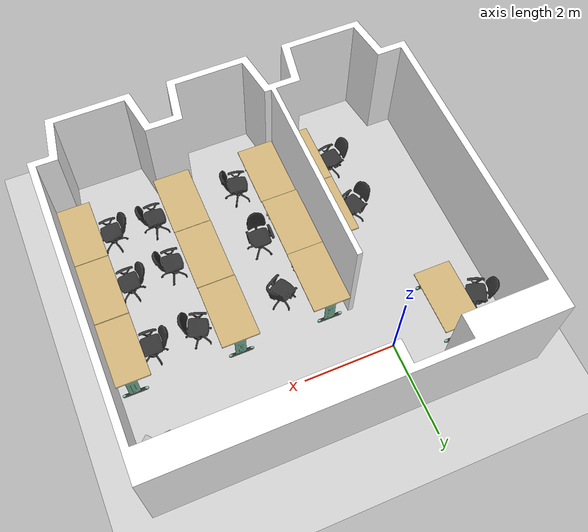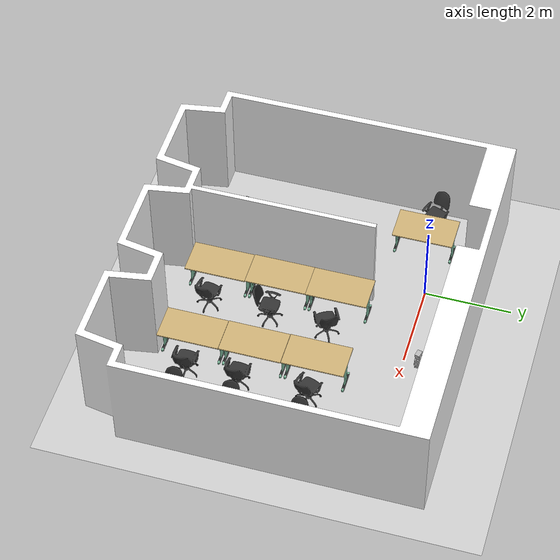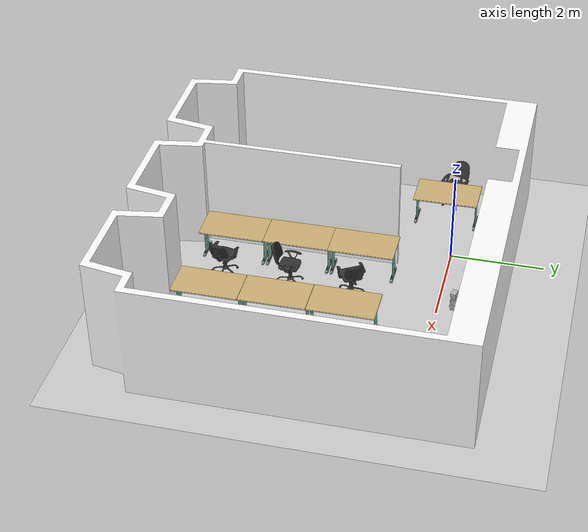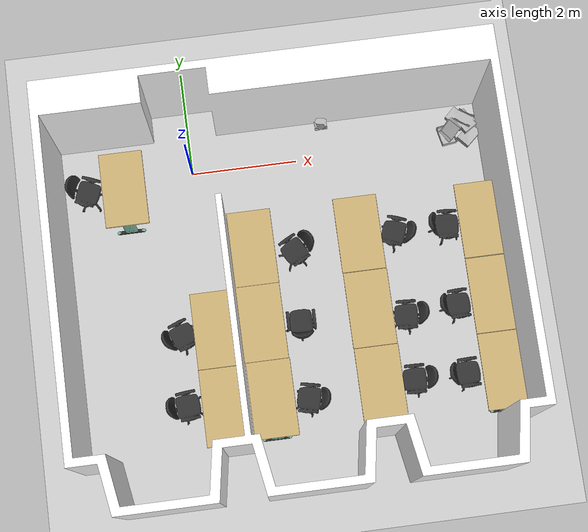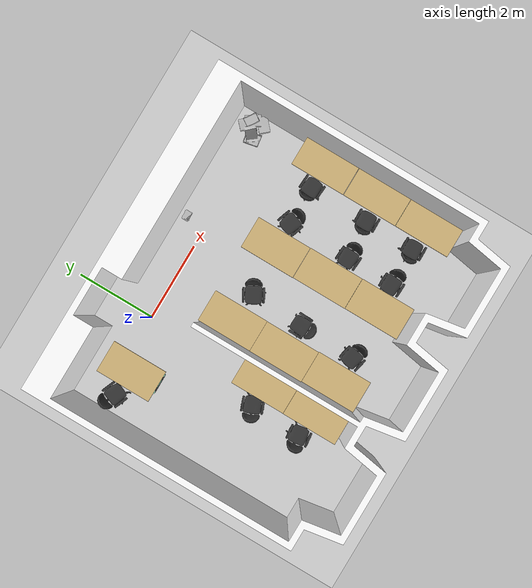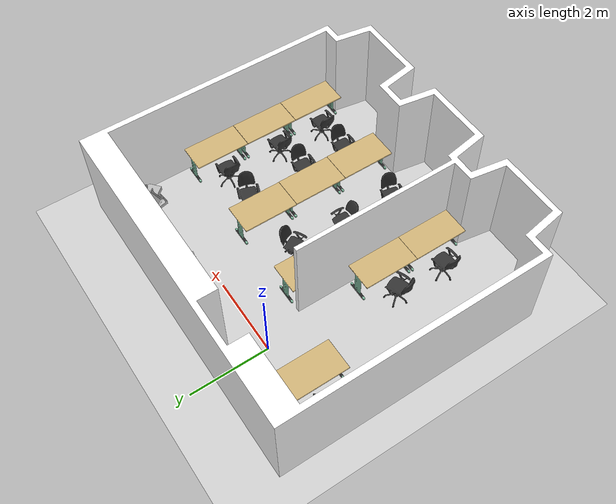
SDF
<sdf version="1.6">
 <world name="default">
  <light name="sun" type="directional">
   <pose>0 0 10 0 -0 0</pose>
   <diffuse>0.8 0.8 0.8 1</diffuse>
   <specular>0.2 0.2 0.2 1</specular>
   <attenuation>
    <range>1000</range>
    <constant>0.9</constant>
    <linear>0.01</linear>
    <quadratic>0.001</quadratic>
   </attenuation>
   <direction>-0.5 0.1 -0.9</direction>
  </light>
  <model name="ground_plane">
   <static>1</static>
   <link name="link">
    <collision name="collision">
     <geometry><plane><normal>0 0 1</normal><size>100 100</size></plane></geometry>
     <surface><friction><ode><mu>100</mu><mu2>50</mu2></ode></friction></surface>
    </collision>
    <visual name="visual">
     <cast_shadows>0</cast_shadows>
     <geometry><plane><normal>0 0 1</normal><size>100 100</size></plane></geometry>
     <material>
      <script><uri>file://media/materials/scripts/gazebo.material</uri><name>Gazebo/Grey</name></script>
     </material>
    </visual>
   </link>
  </model>
  <gravity>0 0 -9.8</gravity>
  <magnetic_field>6e-06 2.3e-05 -4.2e-05</magnetic_field>
  <atmosphere type="adiabatic"/>
  <physics name="default_physics" default="0" type="ode">
   <max_step_size>0.001</max_step_size>
   <real_time_factor>1</real_time_factor>
   <real_time_update_rate>1000</real_time_update_rate>
  </physics>
  <scene><ambient>0.4 0.4 0.4 1</ambient><background>0.7 0.7 0.7 1</background><shadows>1</shadows></scene>
  <spherical_coordinates>
   <surface_model>EARTH_WGS84</surface_model>
   <latitude_deg>0</latitude_deg>
   <longitude_deg>0</longitude_deg>
   <elevation>0</elevation>
   <heading_deg>0</heading_deg>
  </spherical_coordinates>
  <model name="phd_office">
   <link name="link">
    <collision name="collision">
     <geometry><mesh><uri>model://phd_office/meshes/walls.dae</uri></mesh></geometry>
    </collision>
    <visual name="visual">
     <geometry><mesh><uri>model://phd_office/meshes/walls.dae</uri></mesh></geometry>
    </visual>
   </link>
   <static>1</static>
   <pose>-0.091374 -0.006383 0 0 -0 0</pose>
  </model>
  <model name="desk_shared">
   <link name="link">
    <collision name="collision">
     <geometry><mesh><uri>model://desk_shared/meshes/model.dae</uri></mesh></geometry>
    </collision>
    <visual name="visual">
     <geometry><mesh><uri>model://desk_shared/meshes/model.dae</uri></mesh></geometry>
    </visual>
   </link>
   <static>1</static>
   <pose>5.21988 -4.57125 0 0 -0 0</pose>
  </model>
  <model name="desk_shared_0">
   <link name="link">
    <collision name="collision">
     <geometry><mesh><uri>model://desk_shared/meshes/model.dae</uri></mesh></geometry>
    </collision>
    <visual name="visual">
     <geometry><mesh><uri>model://desk_shared/meshes/model.dae</uri></mesh></geometry>
    </visual>
   </link>
   <static>1</static>
   <pose>5.21914 -3.15589 0 0 -0 0</pose>
  </model>
  <model name="desk_shared_1">
   <link name="link">
    <collision name="collision">
     <geometry><mesh><uri>model://desk_shared/meshes/model.dae</uri></mesh></geometry>
    </collision>
    <visual name="visual">
     <geometry><mesh><uri>model://desk_shared/meshes/model.dae</uri></mesh></geometry>
    </visual>
   </link>
   <static>1</static>
   <pose>5.21938 -1.73596 0 0 -0 0</pose>
  </model>
  <model name="desk_shared_2">
   <link name="link">
    <collision name="collision">
     <geometry><mesh><uri>model://desk_shared/meshes/model.dae</uri></mesh></geometry>
    </collision>
    <visual name="visual">
     <geometry><mesh><uri>model://desk_shared/meshes/model.dae</uri></mesh></geometry>
    </visual>
   </link>
   <static>1</static>
   <pose>2.95815 -4.55021 0 0 -0 0</pose>
  </model>
  <model name="desk_shared_3">
   <link name="link">
    <collision name="collision">
     <geometry><mesh><uri>model://desk_shared/meshes/model.dae</uri></mesh></geometry>
    </collision>
    <visual name="visual">
     <geometry><mesh><uri>model://desk_shared/meshes/model.dae</uri></mesh></geometry>
    </visual>
   </link>
   <static>1</static>
   <pose>2.95254 -3.13758 0 0 -0 0</pose>
  </model>
  <model name="desk_shared_4">
   <link name="link">
    <collision name="collision">
     <geometry><mesh><uri>model://desk_shared/meshes/model.dae</uri></mesh></geometry>
    </collision>
    <visual name="visual">
     <geometry><mesh><uri>model://desk_shared/meshes/model.dae</uri></mesh></geometry>
    </visual>
   </link>
   <static>1</static>
   <pose>0.969302 -4.55629 0 0 -0 0</pose>
  </model>
  <model name="desk_shared_5">
   <link name="link">
    <collision name="collision">
     <geometry><mesh><uri>model://desk_shared/meshes/model.dae</uri></mesh></geometry>
    </collision>
    <visual name="visual">
     <geometry><mesh><uri>model://desk_shared/meshes/model.dae</uri></mesh></geometry>
    </visual>
   </link>
   <static>1</static>
   <pose>0.955219 -3.14725 0 0 -0 0</pose>
  </model>
  <model name="desk_shared_6">
   <link name="link">
    <collision name="collision">
     <geometry><mesh><uri>model://desk_shared/meshes/model.dae</uri></mesh></geometry>
    </collision>
    <visual name="visual">
     <geometry><mesh><uri>model://desk_shared/meshes/model.dae</uri></mesh></geometry>
    </visual>
   </link>
   <static>1</static>
   <pose>0.958141 -1.74108 0 0 -0 0</pose>
  </model>
  <model name="desk_shared_7">
   <link name="link">
    <collision name="collision">
     <geometry><mesh><uri>model://desk_shared/meshes/model.dae</uri></mesh></geometry>
    </collision>
    <visual name="visual">
     <geometry><mesh><uri>model://desk_shared/meshes/model.dae</uri></mesh></geometry>
    </visual>
   </link>
   <static>1</static>
   <pose>2.94563 -1.72269 0 0 -0 0</pose>
  </model>
  <model name="boxes">
   <link name="link">
    <collision name="collision">
     <geometry><mesh><uri>model://boxes/meshes/model.dae</uri></mesh></geometry>
    </collision>
    <visual name="visual"><geometry><mesh><uri>model://boxes/meshes/model.dae</uri></mesh></geometry></visual>
   </link>
   <static>1</static>
   <pose>5.19496 0.310746 0 0 -0 0</pose>
  </model>
  <model name="office_chair">
   <link name="link">
    <collision name="collision">
     <geometry><mesh><uri>model://office_chair/meshes/model.dae</uri></mesh></geometry>
    </collision>
    <visual name="visual">
     <geometry><mesh><uri>model://office_chair/meshes/model.dae</uri></mesh></geometry>
    </visual>
   </link>
   <static>1</static>
   <pose>4.53144 -4.51587 0 0 0 -1.54343</pose>
  </model>
  <model name="office_chair_0">
   <link name="link">
    <collision name="collision">
     <geometry><mesh><uri>model://office_chair/meshes/model.dae</uri></mesh></geometry>
    </collision>
    <visual name="visual">
     <geometry><mesh><uri>model://office_chair/meshes/model.dae</uri></mesh></geometry>
    </visual>
   </link>
   <static>1</static>
   <pose>4.54406 -3.23105 0 0 0 -1.53922</pose>
  </model>
  <model name="office_chair_1">
   <link name="link">
    <collision name="collision">
     <geometry><mesh><uri>model://office_chair/meshes/model.dae</uri></mesh></geometry>
    </collision>
    <visual name="visual">
     <geometry><mesh><uri>model://office_chair/meshes/model.dae</uri></mesh></geometry>
    </visual>
   </link>
   <static>1</static>
   <pose>4.56102 -1.71519 0 0 0 -1.63117</pose>
  </model>
  <model name="office_chair_2">
   <link name="link">
    <collision name="collision">
     <geometry><mesh><uri>model://office_chair/meshes/model.dae</uri></mesh></geometry>
    </collision>
    <visual name="visual">
     <geometry><mesh><uri>model://office_chair/meshes/model.dae</uri></mesh></geometry>
    </visual>
   </link>
   <static>1</static>
   <pose>3.66732 -1.74599 0 0 -0 1.23687</pose>
  </model>
  <model name="office_chair_3">
   <link name="link">
    <collision name="collision">
     <geometry><mesh><uri>model://office_chair/meshes/model.dae</uri></mesh></geometry>
    </collision>
    <visual name="visual">
     <geometry><mesh><uri>model://office_chair/meshes/model.dae</uri></mesh></geometry>
    </visual>
   </link>
   <static>1</static>
   <pose>3.67213 -3.32471 0 0 -0 1.51512</pose>
  </model>
  <model name="office_chair_4">
   <link name="link">
    <collision name="collision">
     <geometry><mesh><uri>model://office_chair/meshes/model.dae</uri></mesh></geometry>
    </collision>
    <visual name="visual">
     <geometry><mesh><uri>model://office_chair/meshes/model.dae</uri></mesh></geometry>
    </visual>
   </link>
   <static>1</static>
   <pose>3.65682 -4.51894 0 0 -0 1.54286</pose>
  </model>
  <model name="office_chair_5">
   <link name="link">
    <collision name="collision">
     <geometry><mesh><uri>model://office_chair/meshes/model.dae</uri></mesh></geometry>
    </collision>
    <visual name="visual">
     <geometry><mesh><uri>model://office_chair/meshes/model.dae</uri></mesh></geometry>
    </visual>
   </link>
   <static>1</static>
   <pose>1.6922 -4.62749 0 0 -0 1.36198</pose>
  </model>
  <model name="office_chair_6">
   <link name="link">
    <collision name="collision">
     <geometry><mesh><uri>model://office_chair/meshes/model.dae</uri></mesh></geometry>
    </collision>
    <visual name="visual">
     <geometry><mesh><uri>model://office_chair/meshes/model.dae</uri></mesh></geometry>
    </visual>
   </link>
   <static>1</static>
   <pose>1.67225 -3.22844 0 0 0 -0.024225</pose>
  </model>
  <model name="office_chair_7">
   <link name="link">
    <collision name="collision">
     <geometry><mesh><uri>model://office_chair/meshes/model.dae</uri></mesh></geometry>
    </collision>
    <visual name="visual">
     <geometry><mesh><uri>model://office_chair/meshes/model.dae</uri></mesh></geometry>
    </visual>
   </link>
   <static>1</static>
   <pose>1.77531 -1.82547 0 0 -0 2.07128</pose>
  </model>
  <model name="desk_shared_8">
   <link name="link">
    <collision name="collision">
     <geometry><mesh><uri>model://desk_shared/meshes/model.dae</uri></mesh></geometry>
    </collision>
    <visual name="visual">
     <geometry><mesh><uri>model://desk_shared/meshes/model.dae</uri></mesh></geometry>
    </visual>
   </link>
   <static>1</static>
   <pose>0.10478 -3.16357 0 0 -0 0</pose>
  </model>
  <model name="desk_shared_9">
   <link name="link">
    <collision name="collision">
     <geometry><mesh><uri>model://desk_shared/meshes/model.dae</uri></mesh></geometry>
    </collision>
    <visual name="visual">
     <geometry><mesh><uri>model://desk_shared/meshes/model.dae</uri></mesh></geometry>
    </visual>
   </link>
   <static>1</static>
   <pose>0.10096 -4.57568 0 0 -0 0</pose>
  </model>
  <model name="office_chair_8">
   <link name="link">
    <collision name="collision">
     <geometry><mesh><uri>model://office_chair/meshes/model.dae</uri></mesh></geometry>
    </collision>
    <visual name="visual">
     <geometry><mesh><uri>model://office_chair/meshes/model.dae</uri></mesh></geometry>
    </visual>
   </link>
   <static>1</static>
   <pose>-0.565865 -3.1817 0 0 0 -1.20671</pose>
  </model>
  <model name="office_chair_9">
   <link name="link">
    <collision name="collision">
     <geometry><mesh><uri>model://office_chair/meshes/model.dae</uri></mesh></geometry>
    </collision>
    <visual name="visual">
     <geometry><mesh><uri>model://office_chair/meshes/model.dae</uri></mesh></geometry>
    </visual>
   </link>
   <static>1</static>
   <pose>-0.623075 -4.46866 0 0 0 -1.4665</pose>
  </model>
  <model name="desk_shared_10">
   <link name="link">
    <collision name="collision">
     <geometry><mesh><uri>model://desk_shared/meshes/model.dae</uri></mesh></geometry>
    </collision>
    <visual name="visual">
     <geometry><mesh><uri>model://desk_shared/meshes/model.dae</uri></mesh></geometry>
    </visual>
   </link>
   <static>1</static>
   <pose>-1.27944 -0.317301 0 0 -0 0</pose>
  </model>
  <model name="office_chair_10">
   <link name="link">
    <collision name="collision">
     <geometry><mesh><uri>model://office_chair/meshes/model.dae</uri></mesh></geometry>
    </collision>
    <visual name="visual">
     <geometry><mesh><uri>model://office_chair/meshes/model.dae</uri></mesh></geometry>
    </visual>
   </link>
   <static>1</static>
   <pose>-2.01547 -0.224377 0 0 0 -1.95249</pose>
  </model>
  <model name="books">
   <link name="link">
    <collision name="collision">
     <geometry><mesh><uri>model://books/meshes/model.dae</uri></mesh></geometry>
    </collision>
    <visual name="visual"><geometry><mesh><uri>model://books/meshes/model.dae</uri></mesh></geometry></visual>
   </link>
   <static>1</static>
   <pose>2.5164 0.449756 0.672759 0 -0 0</pose>
  </model>
 </world>
</sdf>
